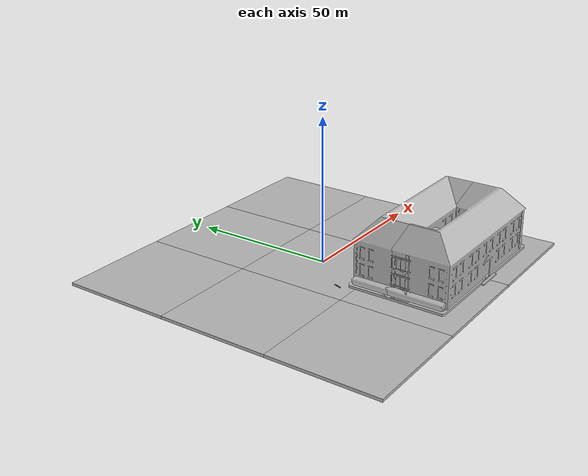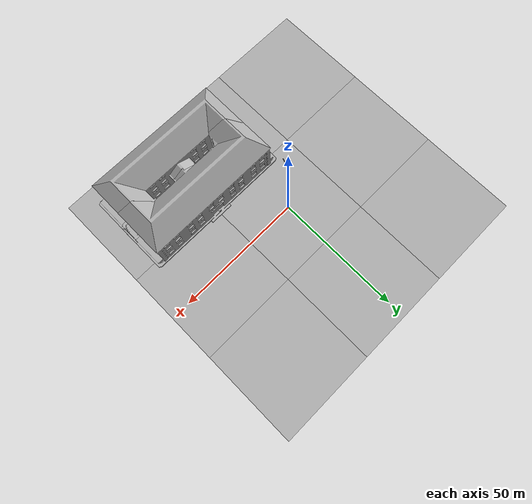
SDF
<sdf version="1.7">
 <world name="default">
  <model name="map_satellite_36.6499_127.4969_100_100">
   <static>1</static>
   <link name="link">
    <collision name="collision">
     <pose>0 0 -0.5 0 -0 0</pose>
     <geometry><box><size>114.985 114.985 1</size></box></geometry>
    </collision>
    <visual name="visual0_0">
     <pose>-38.3283 38.3283 -0.5 0 -0 1.5708</pose>
     <geometry><box><size>38.3283 38.3283 1</size></box></geometry>
     <material>
      <script>
       <uri>model://map_satellite_36.6499_127.4969_100_100/materials/scripts</uri>
       <uri>model://map_satellite_36.6499_127.4969_100_100/materials/textures</uri>
       <name>map_satellite_36.6499_127.4969_100_100/0_0</name>
      </script>
     </material>
    </visual>
    <visual name="visual0_1">
     <pose>0 38.3283 -0.5 0 -0 1.5708</pose>
     <geometry><box><size>38.3283 38.3283 1</size></box></geometry>
     <material>
      <script>
       <uri>model://map_satellite_36.6499_127.4969_100_100/materials/scripts</uri>
       <uri>model://map_satellite_36.6499_127.4969_100_100/materials/textures</uri>
       <name>map_satellite_36.6499_127.4969_100_100/0_1</name>
      </script>
     </material>
    </visual>
    <visual name="visual0_2">
     <pose>38.3283 38.3283 -0.5 0 -0 1.5708</pose>
     <geometry><box><size>38.3283 38.3283 1</size></box></geometry>
     <material>
      <script>
       <uri>model://map_satellite_36.6499_127.4969_100_100/materials/scripts</uri>
       <uri>model://map_satellite_36.6499_127.4969_100_100/materials/textures</uri>
       <name>map_satellite_36.6499_127.4969_100_100/0_2</name>
      </script>
     </material>
    </visual>
    <visual name="visual1_0">
     <pose>-38.3283 0 -0.5 0 -0 1.5708</pose>
     <geometry><box><size>38.3283 38.3283 1</size></box></geometry>
     <material>
      <script>
       <uri>model://map_satellite_36.6499_127.4969_100_100/materials/scripts</uri>
       <uri>model://map_satellite_36.6499_127.4969_100_100/materials/textures</uri>
       <name>map_satellite_36.6499_127.4969_100_100/1_0</name>
      </script>
     </material>
    </visual>
    <visual name="visual1_1">
     <pose>0 0 -0.5 0 -0 1.5708</pose>
     <geometry><box><size>38.3283 38.3283 1</size></box></geometry>
     <material>
      <script>
       <uri>model://map_satellite_36.6499_127.4969_100_100/materials/scripts</uri>
       <uri>model://map_satellite_36.6499_127.4969_100_100/materials/textures</uri>
       <name>map_satellite_36.6499_127.4969_100_100/1_1</name>
      </script>
     </material>
    </visual>
    <visual name="visual1_2">
     <pose>38.3283 0 -0.5 0 -0 1.5708</pose>
     <geometry><box><size>38.3283 38.3283 1</size></box></geometry>
     <material>
      <script>
       <uri>model://map_satellite_36.6499_127.4969_100_100/materials/scripts</uri>
       <uri>model://map_satellite_36.6499_127.4969_100_100/materials/textures</uri>
       <name>map_satellite_36.6499_127.4969_100_100/1_2</name>
      </script>
     </material>
    </visual>
    <visual name="visual2_0">
     <pose>-38.3283 -38.3283 -0.5 0 -0 1.5708</pose>
     <geometry><box><size>38.3283 38.3283 1</size></box></geometry>
     <material>
      <script>
       <uri>model://map_satellite_36.6499_127.4969_100_100/materials/scripts</uri>
       <uri>model://map_satellite_36.6499_127.4969_100_100/materials/textures</uri>
       <name>map_satellite_36.6499_127.4969_100_100/2_0</name>
      </script>
     </material>
    </visual>
    <visual name="visual2_1">
     <pose>0 -38.3283 -0.5 0 -0 1.5708</pose>
     <geometry><box><size>38.3283 38.3283 1</size></box></geometry>
     <material>
      <script>
       <uri>model://map_satellite_36.6499_127.4969_100_100/materials/scripts</uri>
       <uri>model://map_satellite_36.6499_127.4969_100_100/materials/textures</uri>
       <name>map_satellite_36.6499_127.4969_100_100/2_1</name>
      </script>
     </material>
    </visual>
    <visual name="visual2_2">
     <pose>38.3283 -38.3283 -0.5 0 -0 1.5708</pose>
     <geometry><box><size>38.3283 38.3283 1</size></box></geometry>
     <material>
      <script>
       <uri>model://map_satellite_36.6499_127.4969_100_100/materials/scripts</uri>
       <uri>model://map_satellite_36.6499_127.4969_100_100/materials/textures</uri>
       <name>map_satellite_36.6499_127.4969_100_100/2_2</name>
      </script>
     </material>
    </visual>
   </link>
   <pose>0.014059 -0.283883 0 0 -0 0</pose>
  </model>
  <model name="bar2_9">
   <static>1</static>
   <link name="link_3">
    <inertial>
     <mass>1</mass>
     <inertia>
      <ixx>0.166667</ixx>
      <ixy>0</ixy>
      <ixz>0</ixz>
      <iyy>0.166667</iyy>
      <iyz>0</iyz>
      <izz>0.166667</izz>
     </inertia>
    </inertial>
    <pose>4.47991 -0.091961 0 0 -0 0</pose>
    <visual name="visual">
     <geometry>
      <mesh><uri>/home/leejeonghun/model_editor_models/bar2.dae</uri><scale>1 1 1</scale></mesh>
     </geometry>
     <material>
      <lighting>1</lighting>
      <script><uri>file://media/materials/scripts/gazebo.material</uri><name>Gazebo/Black</name></script>
      <shader type="pixel"/>
     </material>
    </visual>
    <collision name="collision">
     <geometry>
      <mesh><uri>/home/leejeonghun/model_editor_models/bar2.dae</uri><scale>1 1 1</scale></mesh>
     </geometry>
     <surface>
      <friction>
       <ode><mu>1</mu><mu2>1</mu2><fdir1>0 0 0</fdir1><slip1>0</slip1><slip2>0</slip2></ode>
       <torsional>
        <coefficient>1</coefficient>
        <patch_radius>0</patch_radius>
        <surface_radius>0</surface_radius>
        <use_patch_radius>1</use_patch_radius>
        <ode><slip>0</slip></ode>
       </torsional>
      </friction>
      <bounce><restitution_coefficient>0</restitution_coefficient><threshold>1e+06</threshold></bounce>
      <contact>
       <collide_without_contact>0</collide_without_contact>
       <collide_without_contact_bitmask>1</collide_without_contact_bitmask>
       <collide_bitmask>1</collide_bitmask>
       <ode>
        <soft_cfm>0</soft_cfm>
        <soft_erp>0.2</soft_erp>
        <kp>1e+13</kp>
        <kd>1</kd>
        <max_vel>0.01</max_vel>
        <min_depth>0</min_depth>
       </ode>
       <bullet>
        <split_impulse>1</split_impulse>
        <split_impulse_penetration_threshold>-0.01</split_impulse_penetration_threshold>
        <soft_cfm>0</soft_cfm>
        <soft_erp>0.2</soft_erp>
        <kp>1e+13</kp>
        <kd>1</kd>
       </bullet>
      </contact>
     </surface>
    </collision>
   </link>
   <static>0</static>
   <pose>-1.18366 -0.583059 0 0 -0 1.23757</pose>
  </model>
  <model name="schoo1">
   <static>1</static>
   <link name="link_0">
    <inertial>
     <mass>1</mass>
     <inertia>
      <ixx>0.166667</ixx>
      <ixy>0</ixy>
      <ixz>0</ixz>
      <iyy>0.166667</iyy>
      <iyz>0</iyz>
      <izz>0.166667</izz>
     </inertia>
    </inertial>
    <pose>1e-06 -1e-06 0 0 -0 0</pose>
    <visual name="visual">
     <geometry>
      <mesh><uri>/home/leejeonghun/model_editor_models/school.dae</uri><scale>1.8 1.3 1.6</scale></mesh>
     </geometry>
     <material>
      <lighting>1</lighting>
      <script><uri>/home/leejeonghun/model_editor_models/school_diffuse.jpg</uri><name>__default__</name></script>
      <shader type="pixel"/>
     </material>
    </visual>
    <collision name="collision">
     <geometry>
      <mesh><uri>/home/leejeonghun/model_editor_models/school.dae</uri><scale>1.8 1.3 1.6</scale></mesh>
     </geometry>
     <surface>
      <friction>
       <ode><mu>1</mu><mu2>1</mu2><fdir1>0 0 0</fdir1><slip1>0</slip1><slip2>0</slip2></ode>
       <torsional>
        <coefficient>1</coefficient>
        <patch_radius>0</patch_radius>
        <surface_radius>0</surface_radius>
        <use_patch_radius>1</use_patch_radius>
        <ode><slip>0</slip></ode>
       </torsional>
      </friction>
      <bounce><restitution_coefficient>0</restitution_coefficient><threshold>1e+06</threshold></bounce>
      <contact>
       <collide_without_contact>0</collide_without_contact>
       <collide_without_contact_bitmask>1</collide_without_contact_bitmask>
       <collide_bitmask>1</collide_bitmask>
       <ode>
        <soft_cfm>0</soft_cfm>
        <soft_erp>0.2</soft_erp>
        <kp>1e+13</kp>
        <kd>1</kd>
        <max_vel>0.01</max_vel>
        <min_depth>0</min_depth>
       </ode>
       <bullet>
        <split_impulse>1</split_impulse>
        <split_impulse_penetration_threshold>-0.01</split_impulse_penetration_threshold>
        <soft_cfm>0</soft_cfm>
        <soft_erp>0.2</soft_erp>
        <kp>1e+13</kp>
        <kd>1</kd>
       </bullet>
      </contact>
     </surface>
    </collision>
   </link>
   <static>0</static>
   <pose>19.0071 -23.8714 0 0 -0 0</pose>
  </model>
  <model name="schoo1_0">
   <static>1</static>
   <link name="link_0">
    <inertial>
     <mass>1</mass>
     <inertia>
      <ixx>0.166667</ixx>
      <ixy>0</ixy>
      <ixz>0</ixz>
      <iyy>0.166667</iyy>
      <iyz>0</iyz>
      <izz>0.166667</izz>
     </inertia>
    </inertial>
    <pose>1e-06 -1e-06 0 0 -0 0</pose>
    <visual name="visual">
     <geometry>
      <mesh><uri>/home/leejeonghun/model_editor_models/school.dae</uri><scale>1.8 1.3 1.6</scale></mesh>
     </geometry>
     <material>
      <lighting>1</lighting>
      <script><uri>/home/leejeonghun/model_editor_models/school_diffuse.jpg</uri><name>__default__</name></script>
      <shader type="pixel"/>
     </material>
    </visual>
    <collision name="collision">
     <geometry>
      <mesh><uri>/home/leejeonghun/model_editor_models/school.dae</uri><scale>1.8 1.3 1.6</scale></mesh>
     </geometry>
     <surface>
      <friction>
       <ode><mu>1</mu><mu2>1</mu2><fdir1>0 0 0</fdir1><slip1>0</slip1><slip2>0</slip2></ode>
       <torsional>
        <coefficient>1</coefficient>
        <patch_radius>0</patch_radius>
        <surface_radius>0</surface_radius>
        <use_patch_radius>1</use_patch_radius>
        <ode><slip>0</slip></ode>
       </torsional>
      </friction>
      <bounce><restitution_coefficient>0</restitution_coefficient><threshold>1e+06</threshold></bounce>
      <contact>
       <collide_without_contact>0</collide_without_contact>
       <collide_without_contact_bitmask>1</collide_without_contact_bitmask>
       <collide_bitmask>1</collide_bitmask>
       <ode>
        <soft_cfm>0</soft_cfm>
        <soft_erp>0.2</soft_erp>
        <kp>1e+13</kp>
        <kd>1</kd>
        <max_vel>0.01</max_vel>
        <min_depth>0</min_depth>
       </ode>
       <bullet>
        <split_impulse>1</split_impulse>
        <split_impulse_penetration_threshold>-0.01</split_impulse_penetration_threshold>
        <soft_cfm>0</soft_cfm>
        <soft_erp>0.2</soft_erp>
        <kp>1e+13</kp>
        <kd>1</kd>
       </bullet>
      </contact>
     </surface>
    </collision>
   </link>
   <static>0</static>
   <pose>18.9437 -43.3299 0 0 -0 3.13661</pose>
  </model>
 </world>
</sdf>
